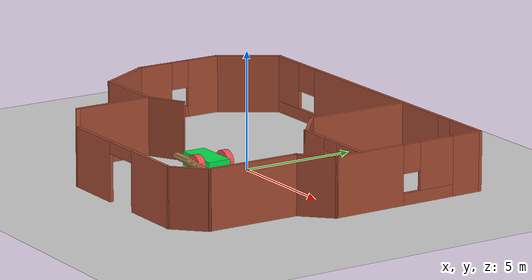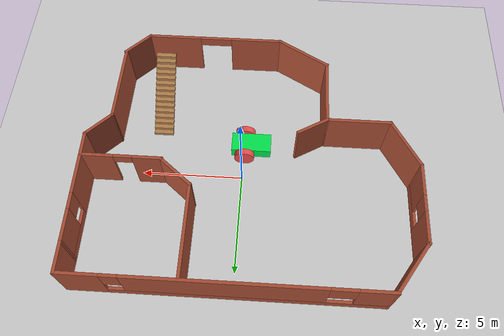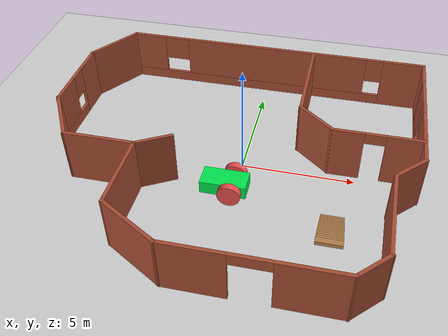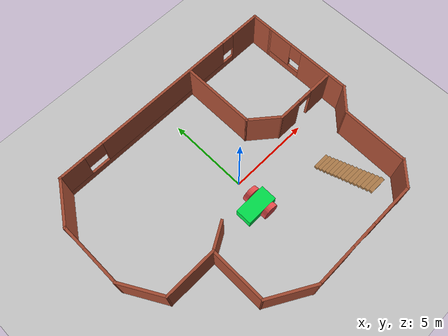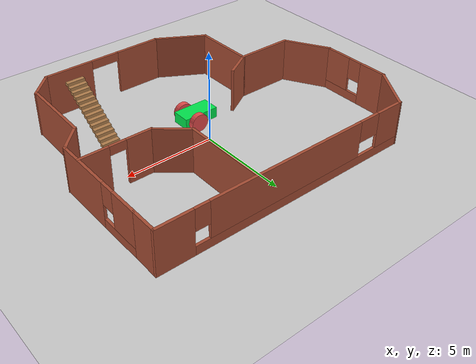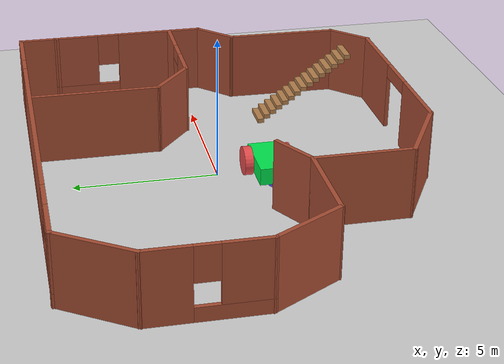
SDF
<?xml version="1.0"?>
<sdf version="1.4">
  <world name="default">
      <include>
      <uri>model://ground_plane</uri>
    </include>

    <include>
      <uri>model://sun</uri>
    </include>
    <model name='diff_robo'>
    <link name='link_0'>
      <inertial>
        <mass>1</mass>
        <inertia>
          <ixx>0.145833</ixx>
          <ixy>0</ixy>
          <ixz>0</ixz>
          <iyy>0.145833</iyy>
          <iyz>0</iyz>
          <izz>0.125</izz>
        </inertia>
        <pose>0 0 0 0 -0 0</pose>
      </inertial>
      <pose>-0.072508 -2.36784 0.5 1.5707 -0 0</pose>
      <gravity>1</gravity>
      <self_collide>0</self_collide>
      <kinematic>0</kinematic>
      <enable_wind>0</enable_wind>
      <visual name='visual'>
        <pose>0 0 0 0 -0 0</pose>
        <geometry>
          <cylinder>
            <radius>0.5</radius>
            <length>0.3</length>
          </cylinder>
        </geometry>
        <material>
          <lighting>1</lighting>
          <script>
            <uri>file://media/materials/scripts/gazebo.material</uri>
            <name>Gazebo/Grey</name>
          </script>
          <shader type='pixel'>
            <normal_map>__default__</normal_map>
          </shader>
          <ambient>0.9 0.3 0.3 1</ambient>
          <diffuse>0.7 0.7 0.7 1</diffuse>
          <specular>0.01 0.01 0.01 1</specular>
          <emissive>0 0 0 1</emissive>
        </material>
        <transparency>0</transparency>
        <cast_shadows>1</cast_shadows>
      </visual>
      <collision name='collision'>
        <laser_retro>0</laser_retro>
        <max_contacts>10</max_contacts>
        <pose>0 0 0 0 -0 0</pose>
        <geometry>
          <cylinder>
            <radius>0.5</radius>
            <length>0.3</length>
          </cylinder>
        </geometry>
        <surface>
          <friction>
            <ode>
              <mu>1</mu>
              <mu2>1</mu2>
              <fdir1>0 0 0</fdir1>
              <slip1>0</slip1>
              <slip2>0</slip2>
            </ode>
            <torsional>
              <coefficient>1</coefficient>
              <patch_radius>0</patch_radius>
              <surface_radius>0</surface_radius>
              <use_patch_radius>1</use_patch_radius>
              <ode>
                <slip>0</slip>
              </ode>
            </torsional>
          </friction>
          <bounce>
            <restitution_coefficient>0</restitution_coefficient>
            <threshold>1e+06</threshold>
          </bounce>
          <contact>
            <collide_without_contact>0</collide_without_contact>
            <collide_without_contact_bitmask>1</collide_without_contact_bitmask>
            <collide_bitmask>1</collide_bitmask>
            <ode>
              <soft_cfm>0</soft_cfm>
              <soft_erp>0.2</soft_erp>
              <kp>1e+13</kp>
              <kd>1</kd>
              <max_vel>0.01</max_vel>
              <min_depth>0</min_depth>
            </ode>
            <bullet>
              <split_impulse>1</split_impulse>
              <split_impulse_penetration_threshold>-0.01</split_impulse_penetration_threshold>
              <soft_cfm>0</soft_cfm>
              <soft_erp>0.2</soft_erp>
              <kp>1e+13</kp>
              <kd>1</kd>
            </bullet>
          </contact>
        </surface>
      </collision>
    </link>
    <link name='link_0_clone'>
      <inertial>
        <mass>1</mass>
        <inertia>
          <ixx>0.145833</ixx>
          <ixy>0</ixy>
          <ixz>0</ixz>
          <iyy>0.145833</iyy>
          <iyz>0</iyz>
          <izz>0.125</izz>
        </inertia>
        <pose>0 0 0 0 -0 0</pose>
      </inertial>
      <pose>-0.072508 -1.02384 0.5 1.5707 -0 0</pose>
      <gravity>1</gravity>
      <self_collide>0</self_collide>
      <kinematic>0</kinematic>
      <enable_wind>0</enable_wind>
      <visual name='visual'>
        <pose>0 0 0 0 -0 0</pose>
        <geometry>
          <cylinder>
            <radius>0.5</radius>
            <length>0.3</length>
          </cylinder>
        </geometry>
        <material>
          <lighting>1</lighting>
          <script>
            <uri>file://media/materials/scripts/gazebo.material</uri>
            <name>Gazebo/Grey</name>
          </script>
          <shader type='pixel'>
            <normal_map>__default__</normal_map>
          </shader>
          <ambient>0.9 0.3 0.3 1</ambient>
          <diffuse>0.7 0.7 0.7 1</diffuse>
          <specular>0.01 0.01 0.01 1</specular>
          <emissive>0 0 0 1</emissive>
        </material>
        <transparency>0</transparency>
        <cast_shadows>1</cast_shadows>
      </visual>
      <collision name='collision'>
        <laser_retro>0</laser_retro>
        <max_contacts>10</max_contacts>
        <pose>0 0 0 0 -0 0</pose>
        <geometry>
          <cylinder>
            <radius>0.5</radius>
            <length>0.3</length>
          </cylinder>
        </geometry>
        <surface>
          <friction>
            <ode>
              <mu>1</mu>
              <mu2>1</mu2>
              <fdir1>0 0 0</fdir1>
              <slip1>0</slip1>
              <slip2>0</slip2>
            </ode>
            <torsional>
              <coefficient>1</coefficient>
              <patch_radius>0</patch_radius>
              <surface_radius>0</surface_radius>
              <use_patch_radius>1</use_patch_radius>
              <ode>
                <slip>0</slip>
              </ode>
            </torsional>
          </friction>
          <bounce>
            <restitution_coefficient>0</restitution_coefficient>
            <threshold>1e+06</threshold>
          </bounce>
          <contact>
            <collide_without_contact>0</collide_without_contact>
            <collide_without_contact_bitmask>1</collide_without_contact_bitmask>
            <collide_bitmask>1</collide_bitmask>
            <ode>
              <soft_cfm>0</soft_cfm>
              <soft_erp>0.2</soft_erp>
              <kp>1e+13</kp>
              <kd>1</kd>
              <max_vel>0.01</max_vel>
              <min_depth>0</min_depth>
            </ode>
            <bullet>
              <split_impulse>1</split_impulse>
              <split_impulse_penetration_threshold>-0.01</split_impulse_penetration_threshold>
              <soft_cfm>0</soft_cfm>
              <soft_erp>0.2</soft_erp>
              <kp>1e+13</kp>
              <kd>1</kd>
            </bullet>
          </contact>
        </surface>
      </collision>
    </link>
    <link name='link_1'>
      <inertial>
        <mass>1</mass>
        <inertia>
          <ixx>0.166667</ixx>
          <ixy>0</ixy>
          <ixz>0</ixz>
          <iyy>0.166667</iyy>
          <iyz>0</iyz>
          <izz>0.166667</izz>
        </inertia>
        <pose>0 0 0 0 -0 0</pose>
      </inertial>
      <pose>-0.402508 -1.69584 0.5 0 -0 0</pose>
      <gravity>1</gravity>
      <self_collide>0</self_collide>
      <kinematic>0</kinematic>
      <enable_wind>0</enable_wind>
      <visual name='visual'>
        <pose>0 0 0 0 -0 0</pose>
        <geometry>
          <box>
            <size>2 1 0.6</size>
          </box>
        </geometry>
        <material>
          <lighting>1</lighting>
          <script>
            <uri>file://media/materials/scripts/gazebo.material</uri>
            <name>Gazebo/Grey</name>
          </script>
          <shader type='pixel'>
            <normal_map>__default__</normal_map>
          </shader>
          <ambient>0 0.9 0.3 1</ambient>
          <diffuse>0.7 0.7 0.7 1</diffuse>
          <specular>0.01 0.01 0.01 1</specular>
          <emissive>0 0 0 1</emissive>
        </material>
        <transparency>0</transparency>
        <cast_shadows>1</cast_shadows>
      </visual>
      <collision name='collision'>
        <laser_retro>0</laser_retro>
        <max_contacts>10</max_contacts>
        <pose>0 0 0 0 -0 0</pose>
        <geometry>
          <box>
            <size>2 1 0.6</size>
          </box>
        </geometry>
        <surface>
          <friction>
            <ode>
              <mu>1</mu>
              <mu2>1</mu2>
              <fdir1>0 0 0</fdir1>
              <slip1>0</slip1>
              <slip2>0</slip2>
            </ode>
            <torsional>
              <coefficient>1</coefficient>
              <patch_radius>0</patch_radius>
              <surface_radius>0</surface_radius>
              <use_patch_radius>1</use_patch_radius>
              <ode>
                <slip>0</slip>
              </ode>
            </torsional>
          </friction>
          <bounce>
            <restitution_coefficient>0</restitution_coefficient>
            <threshold>1e+06</threshold>
          </bounce>
          <contact>
            <collide_without_contact>0</collide_without_contact>
            <collide_without_contact_bitmask>1</collide_without_contact_bitmask>
            <collide_bitmask>1</collide_bitmask>
            <ode>
              <soft_cfm>0</soft_cfm>
              <soft_erp>0.2</soft_erp>
              <kp>1e+13</kp>
              <kd>1</kd>
              <max_vel>0.01</max_vel>
              <min_depth>0</min_depth>
            </ode>
            <bullet>
              <split_impulse>1</split_impulse>
              <split_impulse_penetration_threshold>-0.01</split_impulse_penetration_threshold>
              <soft_cfm>0</soft_cfm>
              <soft_erp>0.2</soft_erp>
              <kp>1e+13</kp>
              <kd>1</kd>
            </bullet>
          </contact>
        </surface>
      </collision>
    </link>
    <link name='link_2'>
      <inertial>
        <mass>1</mass>
        <inertia>
          <ixx>0.1</ixx>
          <ixy>0</ixy>
          <ixz>0</ixz>
          <iyy>0.1</iyy>
          <iyz>0</iyz>
          <izz>0.1</izz>
        </inertia>
        <pose>0 0 0 0 -0 0</pose>
      </inertial>
      <pose>-1.19834 -1.69584 0.2 0 -0 0</pose>
      <gravity>1</gravity>
      <self_collide>0</self_collide>
      <kinematic>0</kinematic>
      <enable_wind>0</enable_wind>
      <visual name='visual'>
        <pose>0 0 0 0 -0 0</pose>
        <geometry>
          <sphere>
            <radius>0.2</radius>
          </sphere>
        </geometry>
        <material>
          <lighting>1</lighting>
          <script>
            <uri>file://media/materials/scripts/gazebo.material</uri>
            <name>Gazebo/Grey</name>
          </script>
          <shader type='pixel'>
            <normal_map>__default__</normal_map>
          </shader>
          <ambient>0.3 0.3 0.9 1</ambient>
          <diffuse>0.7 0.7 0.7 1</diffuse>
          <specular>0.01 0.01 0.01 1</specular>
          <emissive>0 0 0 1</emissive>
        </material>
        <transparency>0</transparency>
        <cast_shadows>1</cast_shadows>
      </visual>
      <collision name='collision'>
        <laser_retro>0</laser_retro>
        <max_contacts>10</max_contacts>
        <pose>0 0 0 0 -0 0</pose>
        <geometry>
          <sphere>
            <radius>0.2</radius>
          </sphere>
        </geometry>
        <surface>
          <friction>
            <ode>
              <mu>1</mu>
              <mu2>1</mu2>
              <fdir1>0 0 0</fdir1>
              <slip1>0</slip1>
              <slip2>0</slip2>
            </ode>
            <torsional>
              <coefficient>1</coefficient>
              <patch_radius>0</patch_radius>
              <surface_radius>0</surface_radius>
              <use_patch_radius>1</use_patch_radius>
              <ode>
                <slip>0</slip>
              </ode>
            </torsional>
          </friction>
          <bounce>
            <restitution_coefficient>0</restitution_coefficient>
            <threshold>1e+06</threshold>
          </bounce>
          <contact>
            <collide_without_contact>0</collide_without_contact>
            <collide_without_contact_bitmask>1</collide_without_contact_bitmask>
            <collide_bitmask>1</collide_bitmask>
            <ode>
              <soft_cfm>0</soft_cfm>
              <soft_erp>0.2</soft_erp>
              <kp>1e+13</kp>
              <kd>1</kd>
              <max_vel>0.01</max_vel>
              <min_depth>0</min_depth>
            </ode>
            <bullet>
              <split_impulse>1</split_impulse>
              <split_impulse_penetration_threshold>-0.01</split_impulse_penetration_threshold>
              <soft_cfm>0</soft_cfm>
              <soft_erp>0.2</soft_erp>
              <kp>1e+13</kp>
              <kd>1</kd>
            </bullet>
          </contact>
        </surface>
      </collision>
    </link>
    <joint name='caster_joint' type='ball'>
      <parent>link_1</parent>
      <child>link_2</child>
      <pose>0 0 0 0 -0 0</pose>
      <physics>
        <ode>
          <limit>
            <cfm>0</cfm>
            <erp>0.2</erp>
          </limit>
          <suspension>
            <cfm>0</cfm>
            <erp>0.2</erp>
          </suspension>
        </ode>
      </physics>
    </joint>
    <joint name='left_wheel_joint' type='revolute'>
      <parent>link_1</parent>
      <child>link_0</child>
      <pose>0 0 0 0 -0.06 0</pose>
      <axis>
        <xyz>0 0 1</xyz>
        <limit>
          <lower>-1.79769e+308</lower>
          <upper>1.79769e+308</upper>
          <effort>-1</effort>
          <velocity>-1</velocity>
        </limit>
        <dynamics>
          <spring_reference>0</spring_reference>
          <spring_stiffness>0</spring_stiffness>
          <damping>0</damping>
          <friction>0</friction>
        </dynamics>
      </axis>
      <physics>
        <ode>
          <limit>
            <cfm>0</cfm>
            <erp>0.2</erp>
          </limit>
          <suspension>
            <cfm>0</cfm>
            <erp>0.2</erp>
          </suspension>
        </ode>
      </physics>
    </joint>
    <joint name='right_wheel_joint' type='revolute'>
      <parent>link_1</parent>
      <child>link_0_clone</child>
      <pose>0 0 0 0 -0 0</pose>
      <axis>
        <xyz>0 0 1</xyz>
        <limit>
          <lower>-1.79769e+308</lower>
          <upper>1.79769e+308</upper>
          <effort>-1</effort>
          <velocity>-1</velocity>
        </limit>
        <dynamics>
          <spring_reference>0</spring_reference>
          <spring_stiffness>0</spring_stiffness>
          <damping>0</damping>
          <friction>0</friction>
        </dynamics>
      </axis>
      <physics>
        <ode>
          <limit>
            <cfm>0</cfm>
            <erp>0.2</erp>
          </limit>
          <suspension>
            <cfm>0</cfm>
            <erp>0.2</erp>
          </suspension>
        </ode>
      </physics>
    </joint>
    <static>0</static>
    <allow_auto_disable>1</allow_auto_disable>
  </model>
  <model name='my_building'>
    <pose>-0.436912 -0.411084 0 0 -0 0</pose>

    <link name='Stairs_1'>
      <visual name='Stairs_1_Visual_0'>
        <pose>4.72294 -2.02924 0.083333 0 -0 0</pose>
        <geometry>
          <box>
            <size>1 0.233333 0.166667</size>
          </box>
        </geometry>
        <material>
          <script>
            <uri>file://media/materials/scripts/gazebo.material</uri>
            <name>Gazebo/Wood</name>
          </script>
          <ambient>1 1 1 1</ambient>
        </material>
        <meta>
          <layer>0</layer>
        </meta>
      </visual>
      <collision name='Stairs_1_Collision_0'>
        <geometry>
          <box>
            <size>1 0.233333 0.166667</size>
          </box>
        </geometry>
        <pose>4.72294 -2.02924 0.083333 0 -0 0</pose>
      </collision>
      <visual name='Stairs_1_Visual_1'>
        <pose>4.72294 -2.26257 0.25 0 -0 0</pose>
        <geometry>
          <box>
            <size>1 0.233333 0.166667</size>
          </box>
        </geometry>
        <material>
          <script>
            <uri>file://media/materials/scripts/gazebo.material</uri>
            <name>Gazebo/Wood</name>
          </script>
          <ambient>1 1 1 1</ambient>
        </material>
        <meta>
          <layer>0</layer>
        </meta>
      </visual>
      <collision name='Stairs_1_Collision_1'>
        <geometry>
          <box>
            <size>1 0.233333 0.166667</size>
          </box>
        </geometry>
        <pose>4.72294 -2.26257 0.25 0 -0 0</pose>
      </collision>
      <visual name='Stairs_1_Visual_2'>
        <pose>4.72294 -2.49591 0.416667 0 -0 0</pose>
        <geometry>
          <box>
            <size>1 0.233333 0.166667</size>
          </box>
        </geometry>
        <material>
          <script>
            <uri>file://media/materials/scripts/gazebo.material</uri>
            <name>Gazebo/Wood</name>
          </script>
          <ambient>1 1 1 1</ambient>
        </material>
        <meta>
          <layer>0</layer>
        </meta>
      </visual>
      <collision name='Stairs_1_Collision_2'>
        <geometry>
          <box>
            <size>1 0.233333 0.166667</size>
          </box>
        </geometry>
        <pose>4.72294 -2.49591 0.416667 0 -0 0</pose>
      </collision>
      <visual name='Stairs_1_Visual_3'>
        <pose>4.72294 -2.72924 0.583333 0 -0 0</pose>
        <geometry>
          <box>
            <size>1 0.233333 0.166667</size>
          </box>
        </geometry>
        <material>
          <script>
            <uri>file://media/materials/scripts/gazebo.material</uri>
            <name>Gazebo/Wood</name>
          </script>
          <ambient>1 1 1 1</ambient>
        </material>
        <meta>
          <layer>0</layer>
        </meta>
      </visual>
      <collision name='Stairs_1_Collision_3'>
        <geometry>
          <box>
            <size>1 0.233333 0.166667</size>
          </box>
        </geometry>
        <pose>4.72294 -2.72924 0.583333 0 -0 0</pose>
      </collision>
      <visual name='Stairs_1_Visual_4'>
        <pose>4.72294 -2.96257 0.75 0 -0 0</pose>
        <geometry>
          <box>
            <size>1 0.233333 0.166667</size>
          </box>
        </geometry>
        <material>
          <script>
            <uri>file://media/materials/scripts/gazebo.material</uri>
            <name>Gazebo/Wood</name>
          </script>
          <ambient>1 1 1 1</ambient>
        </material>
        <meta>
          <layer>0</layer>
        </meta>
      </visual>
      <collision name='Stairs_1_Collision_4'>
        <geometry>
          <box>
            <size>1 0.233333 0.166667</size>
          </box>
        </geometry>
        <pose>4.72294 -2.96257 0.75 0 -0 0</pose>
      </collision>
      <visual name='Stairs_1_Visual_5'>
        <pose>4.72294 -3.19591 0.916667 0 -0 0</pose>
        <geometry>
          <box>
            <size>1 0.233333 0.166667</size>
          </box>
        </geometry>
        <material>
          <script>
            <uri>file://media/materials/scripts/gazebo.material</uri>
            <name>Gazebo/Wood</name>
          </script>
          <ambient>1 1 1 1</ambient>
        </material>
        <meta>
          <layer>0</layer>
        </meta>
      </visual>
      <collision name='Stairs_1_Collision_5'>
        <geometry>
          <box>
            <size>1 0.233333 0.166667</size>
          </box>
        </geometry>
        <pose>4.72294 -3.19591 0.916667 0 -0 0</pose>
      </collision>
      <visual name='Stairs_1_Visual_6'>
        <pose>4.72294 -3.42924 1.08333 0 -0 0</pose>
        <geometry>
          <box>
            <size>1 0.233333 0.166667</size>
          </box>
        </geometry>
        <material>
          <script>
            <uri>file://media/materials/scripts/gazebo.material</uri>
            <name>Gazebo/Wood</name>
          </script>
          <ambient>1 1 1 1</ambient>
        </material>
        <meta>
          <layer>0</layer>
        </meta>
      </visual>
      <collision name='Stairs_1_Collision_6'>
        <geometry>
          <box>
            <size>1 0.233333 0.166667</size>
          </box>
        </geometry>
        <pose>4.72294 -3.42924 1.08333 0 -0 0</pose>
      </collision>
      <visual name='Stairs_1_Visual_7'>
        <pose>4.72294 -3.66257 1.25 0 -0 0</pose>
        <geometry>
          <box>
            <size>1 0.233333 0.166667</size>
          </box>
        </geometry>
        <material>
          <script>
            <uri>file://media/materials/scripts/gazebo.material</uri>
            <name>Gazebo/Wood</name>
          </script>
          <ambient>1 1 1 1</ambient>
        </material>
        <meta>
          <layer>0</layer>
        </meta>
      </visual>
      <collision name='Stairs_1_Collision_7'>
        <geometry>
          <box>
            <size>1 0.233333 0.166667</size>
          </box>
        </geometry>
        <pose>4.72294 -3.66257 1.25 0 -0 0</pose>
      </collision>
      <visual name='Stairs_1_Visual_8'>
        <pose>4.72294 -3.89591 1.41667 0 -0 0</pose>
        <geometry>
          <box>
            <size>1 0.233333 0.166667</size>
          </box>
        </geometry>
        <material>
          <script>
            <uri>file://media/materials/scripts/gazebo.material</uri>
            <name>Gazebo/Wood</name>
          </script>
          <ambient>1 1 1 1</ambient>
        </material>
        <meta>
          <layer>0</layer>
        </meta>
      </visual>
      <collision name='Stairs_1_Collision_8'>
        <geometry>
          <box>
            <size>1 0.233333 0.166667</size>
          </box>
        </geometry>
        <pose>4.72294 -3.89591 1.41667 0 -0 0</pose>
      </collision>
      <visual name='Stairs_1_Visual_9'>
        <pose>4.72294 -4.12924 1.58333 0 -0 0</pose>
        <geometry>
          <box>
            <size>1 0.233333 0.166667</size>
          </box>
        </geometry>
        <material>
          <script>
            <uri>file://media/materials/scripts/gazebo.material</uri>
            <name>Gazebo/Wood</name>
          </script>
          <ambient>1 1 1 1</ambient>
        </material>
        <meta>
          <layer>0</layer>
        </meta>
      </visual>
      <collision name='Stairs_1_Collision_9'>
        <geometry>
          <box>
            <size>1 0.233333 0.166667</size>
          </box>
        </geometry>
        <pose>4.72294 -4.12924 1.58333 0 -0 0</pose>
      </collision>
      <visual name='Stairs_1_Visual_10'>
        <pose>4.72294 -4.36257 1.75 0 -0 0</pose>
        <geometry>
          <box>
            <size>1 0.233333 0.166667</size>
          </box>
        </geometry>
        <material>
          <script>
            <uri>file://media/materials/scripts/gazebo.material</uri>
            <name>Gazebo/Wood</name>
          </script>
          <ambient>1 1 1 1</ambient>
        </material>
        <meta>
          <layer>0</layer>
        </meta>
      </visual>
      <collision name='Stairs_1_Collision_10'>
        <geometry>
          <box>
            <size>1 0.233333 0.166667</size>
          </box>
        </geometry>
        <pose>4.72294 -4.36257 1.75 0 -0 0</pose>
      </collision>
      <visual name='Stairs_1_Visual_11'>
        <pose>4.72294 -4.59591 1.91667 0 -0 0</pose>
        <geometry>
          <box>
            <size>1 0.233333 0.166667</size>
          </box>
        </geometry>
        <material>
          <script>
            <uri>file://media/materials/scripts/gazebo.material</uri>
            <name>Gazebo/Wood</name>
          </script>
          <ambient>1 1 1 1</ambient>
        </material>
        <meta>
          <layer>0</layer>
        </meta>
      </visual>
      <collision name='Stairs_1_Collision_11'>
        <geometry>
          <box>
            <size>1 0.233333 0.166667</size>
          </box>
        </geometry>
        <pose>4.72294 -4.59591 1.91667 0 -0 0</pose>
      </collision>
      <visual name='Stairs_1_Visual_12'>
        <pose>4.72294 -4.82924 2.08333 0 -0 0</pose>
        <geometry>
          <box>
            <size>1 0.233333 0.166667</size>
          </box>
        </geometry>
        <material>
          <script>
            <uri>file://media/materials/scripts/gazebo.material</uri>
            <name>Gazebo/Wood</name>
          </script>
          <ambient>1 1 1 1</ambient>
        </material>
        <meta>
          <layer>0</layer>
        </meta>
      </visual>
      <collision name='Stairs_1_Collision_12'>
        <geometry>
          <box>
            <size>1 0.233333 0.166667</size>
          </box>
        </geometry>
        <pose>4.72294 -4.82924 2.08333 0 -0 0</pose>
      </collision>
      <visual name='Stairs_1_Visual_13'>
        <pose>4.72294 -5.06257 2.25 0 -0 0</pose>
        <geometry>
          <box>
            <size>1 0.233333 0.166667</size>
          </box>
        </geometry>
        <material>
          <script>
            <uri>file://media/materials/scripts/gazebo.material</uri>
            <name>Gazebo/Wood</name>
          </script>
          <ambient>1 1 1 1</ambient>
        </material>
        <meta>
          <layer>0</layer>
        </meta>
      </visual>
      <collision name='Stairs_1_Collision_13'>
        <geometry>
          <box>
            <size>1 0.233333 0.166667</size>
          </box>
        </geometry>
        <pose>4.72294 -5.06257 2.25 0 -0 0</pose>
      </collision>
      <visual name='Stairs_1_Visual_14'>
        <pose>4.72294 -5.29591 2.41667 0 -0 0</pose>
        <geometry>
          <box>
            <size>1 0.233333 0.166667</size>
          </box>
        </geometry>
        <material>
          <script>
            <uri>file://media/materials/scripts/gazebo.material</uri>
            <name>Gazebo/Wood</name>
          </script>
          <ambient>1 1 1 1</ambient>
        </material>
        <meta>
          <layer>0</layer>
        </meta>
      </visual>
      <collision name='Stairs_1_Collision_14'>
        <geometry>
          <box>
            <size>1 0.233333 0.166667</size>
          </box>
        </geometry>
        <pose>4.72294 -5.29591 2.41667 0 -0 0</pose>
      </collision>
    </link>
    <link name='Wall_10'>
      <collision name='Wall_10_Collision'>
        <geometry>
          <box>
            <size>3 0.15 2.5</size>
          </box>
        </geometry>
        <pose>0 0 1.25 0 -0 0</pose>
      </collision>
      <visual name='Wall_10_Visual'>
        <pose>0 0 1.25 0 -0 0</pose>
        <geometry>
          <box>
            <size>3 0.15 2.5</size>
          </box>
        </geometry>
        <material>
          <script>
            <uri>file://media/materials/scripts/gazebo.material</uri>
            <name>Gazebo/Bricks</name>
          </script>
          <ambient>1 1 1 1</ambient>
        </material>
        <meta>
          <layer>0</layer>
        </meta>
      </visual>
      <pose>-2.41253 -5.86069 0 0 -0 -0.523599</pose>
    </link>
    <link name='Wall_14'>
      <collision name='Wall_14_Collision'>
        <geometry>
          <box>
            <size>1.75 0.15 2.5</size>
          </box>
        </geometry>
        <pose>0 0 1.25 0 -0 0</pose>
      </collision>
      <visual name='Wall_14_Visual'>
        <pose>0 0 1.25 0 -0 0</pose>
        <geometry>
          <box>
            <size>1.75 0.15 2.5</size>
          </box>
        </geometry>
        <material>
          <script>
            <uri>file://media/materials/scripts/gazebo.material</uri>
            <name>Gazebo/Bricks</name>
          </script>
          <ambient>1 1 1 1</ambient>
        </material>
        <meta>
          <layer>0</layer>
        </meta>
      </visual>
      <pose>6.3034 -5.9788 0 0 -0 0.785398</pose>
    </link>
    <link name='Wall_15'>
      <collision name='Wall_15_Collision'>
        <geometry>
          <box>
            <size>4.11046 0.15 2.5</size>
          </box>
        </geometry>
        <pose>0 0 1.25 0 -0 0</pose>
      </collision>
      <visual name='Wall_15_Visual'>
        <pose>0 0 1.25 0 -0 0</pose>
        <geometry>
          <box>
            <size>4.11046 0.15 2.5</size>
          </box>
        </geometry>
        <material>
          <script>
            <uri>file://media/materials/scripts/gazebo.material</uri>
            <name>Gazebo/Bricks</name>
          </script>
          <ambient>1 1 1 1</ambient>
        </material>
        <meta>
          <layer>0</layer>
        </meta>
      </visual>
      <pose>6.88008 -3.43316 0 0 -0 1.55415</pose>
    </link>
    <link name='Wall_16'>
      <collision name='Wall_16_Collision'>
        <geometry>
          <box>
            <size>1.75 0.15 2.5</size>
          </box>
        </geometry>
        <pose>0 0 1.25 0 -0 0</pose>
      </collision>
      <visual name='Wall_16_Visual'>
        <pose>0 0 1.25 0 -0 0</pose>
        <geometry>
          <box>
            <size>1.75 0.15 2.5</size>
          </box>
        </geometry>
        <material>
          <script>
            <uri>file://media/materials/scripts/gazebo.material</uri>
            <name>Gazebo/Bricks</name>
          </script>
          <ambient>1 1 1 1</ambient>
        </material>
        <meta>
          <layer>0</layer>
        </meta>
      </visual>
      <pose>7.47873 -0.887521 0 0 -0 0.785398</pose>
    </link>
    <link name='Wall_17'>
      <pose>8.03611 2.45705 0 0 -0 1.57379</pose>
      <visual name='Wall_17_Visual_0'>
        <pose>-1.23829 0 1.25 0 -0 0</pose>
        <geometry>
          <box>
            <size>3.23122 0.15 2.5</size>
          </box>
        </geometry>
        <material>
          <script>
            <uri>file://media/materials/scripts/gazebo.material</uri>
            <name>Gazebo/Bricks</name>
          </script>
          <ambient>1 1 1 1</ambient>
        </material>
        <meta>
          <layer>0</layer>
        </meta>
      </visual>
      <collision name='Wall_17_Collision_0'>
        <geometry>
          <box>
            <size>3.23122 0.15 2.5</size>
          </box>
        </geometry>
        <pose>-1.23829 0 1.25 0 -0 0</pose>
      </collision>
      <visual name='Wall_17_Visual_1'>
        <pose>1.61561 0 0.25 0 -0 0</pose>
        <geometry>
          <box>
            <size>2.47657 0.15 0.5</size>
          </box>
        </geometry>
        <material>
          <script>
            <uri>file://media/materials/scripts/gazebo.material</uri>
            <name>Gazebo/Bricks</name>
          </script>
          <ambient>1 1 1 1</ambient>
        </material>
        <meta>
          <layer>0</layer>
        </meta>
      </visual>
      <collision name='Wall_17_Collision_1'>
        <geometry>
          <box>
            <size>2.47657 0.15 0.5</size>
          </box>
        </geometry>
        <pose>1.61561 0 0.25 0 -0 0</pose>
      </collision>
      <visual name='Wall_17_Visual_2'>
        <pose>2.01561 0 1.5 0 -0 0</pose>
        <geometry>
          <box>
            <size>1.67657 0.15 2</size>
          </box>
        </geometry>
        <material>
          <script>
            <uri>file://media/materials/scripts/gazebo.material</uri>
            <name>Gazebo/Bricks</name>
          </script>
          <ambient>1 1 1 1</ambient>
        </material>
        <meta>
          <layer>0</layer>
        </meta>
      </visual>
      <collision name='Wall_17_Collision_2'>
        <geometry>
          <box>
            <size>1.67657 0.15 2</size>
          </box>
        </geometry>
        <pose>2.01561 0 1.5 0 -0 0</pose>
      </collision>
      <visual name='Wall_17_Visual_3'>
        <pose>0.777321 0 1.9 0 -0 0</pose>
        <geometry>
          <box>
            <size>0.8 0.15 1.2</size>
          </box>
        </geometry>
        <material>
          <script>
            <uri>file://media/materials/scripts/gazebo.material</uri>
            <name>Gazebo/Bricks</name>
          </script>
          <ambient>1 1 1 1</ambient>
        </material>
        <meta>
          <layer>0</layer>
        </meta>
      </visual>
      <collision name='Wall_17_Collision_3'>
        <geometry>
          <box>
            <size>0.8 0.15 1.2</size>
          </box>
        </geometry>
        <pose>0.777321 0 1.9 0 -0 0</pose>
      </collision>
    </link>
    <link name='Wall_18'>
      <collision name='Wall_18_Collision'>
        <geometry>
          <box>
            <size>1.5 0.15 2.5</size>
          </box>
        </geometry>
        <pose>0 0 1.25 0 -0 0</pose>
      </collision>
      <visual name='Wall_18_Visual'>
        <pose>0 0 1.25 0 -0 0</pose>
        <geometry>
          <box>
            <size>1.5 0.15 2.5</size>
          </box>
        </geometry>
        <material>
          <script>
            <uri>file://media/materials/scripts/gazebo.material</uri>
            <name>Gazebo/Bricks</name>
          </script>
          <ambient>0.929412 0.831373 0 1</ambient>
        </material>
        <meta>
          <layer>0</layer>
        </meta>
      </visual>
      <pose>8.0278 5.886 0 0 -0 1.5708</pose>
    </link>
    <link name='Wall_22'>
      <collision name='Wall_22_Collision'>
        <geometry>
          <box>
            <size>1.75 0.15 2.5</size>
          </box>
        </geometry>
        <pose>0 0 1.25 0 -0 0</pose>
      </collision>
      <visual name='Wall_22_Visual'>
        <pose>0 0 1.25 0 -0 0</pose>
        <geometry>
          <box>
            <size>1.75 0.15 2.5</size>
          </box>
        </geometry>
        <material>
          <script>
            <uri>file://media/materials/scripts/gazebo.material</uri>
            <name>Gazebo/Bricks</name>
          </script>
          <ambient>1 1 1 1</ambient>
        </material>
        <meta>
          <layer>0</layer>
        </meta>
      </visual>
      <pose>-2.9538 -1.39819 0 0 -0 0.523599</pose>
    </link>

    <link name='Wall_33'>
      <pose>2.27964 -6.55884 0 0 -0 0.00415</pose>
      <visual name='Wall_33_Visual_0'>
        <pose>-2.20117 0 1.25 0 -0 0</pose>
        <geometry>
          <box>
            <size>2.66389 0.15 2.5</size>
          </box>
        </geometry>
        <material>
          <script>
            <uri>file://media/materials/scripts/gazebo.material</uri>
            <name>Gazebo/Bricks</name>
          </script>
          <ambient>1 1 1 1</ambient>
        </material>
        <meta>
          <layer>0</layer>
        </meta>
      </visual>
      <collision name='Wall_33_Collision_0'>
        <geometry>
          <box>
            <size>2.66389 0.15 2.5</size>
          </box>
        </geometry>
        <pose>-2.20117 0 1.25 0 -0 0</pose>
      </collision>
      <visual name='Wall_33_Visual_1'>
        <pose>2.14418 0 1.25 0 -0 0</pose>
        <geometry>
          <box>
            <size>2.77786 0.15 2.5</size>
          </box>
        </geometry>
        <material>
          <script>
            <uri>file://media/materials/scripts/gazebo.material</uri>
            <name>Gazebo/Bricks</name>
          </script>
          <ambient>1 1 1 1</ambient>
        </material>
        <meta>
          <layer>0</layer>
        </meta>
      </visual>
      <collision name='Wall_33_Collision_1'>
        <geometry>
          <box>
            <size>2.77786 0.15 2.5</size>
          </box>
        </geometry>
        <pose>2.14418 0 1.25 0 -0 0</pose>
      </collision>
      <visual name='Wall_33_Visual_2'>
        <pose>-0.056989 0 2.25 0 -0 0</pose>
        <geometry>
          <box>
            <size>1.62447 0.15 0.5</size>
          </box>
        </geometry>
        <material>
          <script>
            <uri>file://media/materials/scripts/gazebo.material</uri>
            <name>Gazebo/Bricks</name>
          </script>
          <ambient>1 1 1 1</ambient>
        </material>
        <meta>
          <layer>0</layer>
        </meta>
      </visual>
      <collision name='Wall_33_Collision_2'>
        <geometry>
          <box>
            <size>1.62447 0.15 0.5</size>
          </box>
        </geometry>
        <pose>-0.056989 0 2.25 0 -0 0</pose>
      </collision>
    </link>
    <link name='Wall_35'>
      <collision name='Wall_35_Collision'>
        <geometry>
          <box>
            <size>4.5 0.15 2.5</size>
          </box>
        </geometry>
        <pose>0 0 1.25 0 -0 0</pose>
      </collision>
      <visual name='Wall_35_Visual'>
        <pose>0 0 1.25 0 -0 0</pose>
        <geometry>
          <box>
            <size>4.5 0.15 2.5</size>
          </box>
        </geometry>
        <material>
          <script>
            <uri>file://media/materials/scripts/gazebo.material</uri>
            <name>Gazebo/Bricks</name>
          </script>
          <ambient>1 1 1 1</ambient>
        </material>
        <meta>
          <layer>0</layer>
        </meta>
      </visual>
      <pose>2.70138 4.25976 0 0 -0 -1.5708</pose>
    </link>
    <link name='Wall_36'>
      <collision name='Wall_36_Collision'>
        <geometry>
          <box>
            <size>2.08029 0.15 2.5</size>
          </box>
        </geometry>
        <pose>0 0 1.25 0 -0 0</pose>
      </collision>
      <visual name='Wall_36_Visual'>
        <pose>0 0 1.25 0 -0 0</pose>
        <geometry>
          <box>
            <size>2.08029 0.15 2.5</size>
          </box>
        </geometry>
        <material>
          <script>
            <uri>file://media/materials/scripts/gazebo.material</uri>
            <name>Gazebo/Bricks</name>
          </script>
          <ambient>1 1 1 1</ambient>
        </material>
        <meta>
          <layer>0</layer>
        </meta>
      </visual>
      <pose>3.44443 1.46882 0 0 -0 -0.692137</pose>
    </link>
    <link name='Wall_37'>
      <pose>6.11248 0.827455 0 0 -0 0</pose>
      <visual name='Wall_37_Visual_0'>
        <pose>-1.26639 0 1.25 0 -0 0</pose>
        <geometry>
          <box>
            <size>1.46721 0.15 2.5</size>
          </box>
        </geometry>
        <material>
          <script>
            <uri>file://media/materials/scripts/gazebo.material</uri>
            <name>Gazebo/Bricks</name>
          </script>
          <ambient>1 1 1 1</ambient>
        </material>
        <meta>
          <layer>0</layer>
        </meta>
      </visual>
      <collision name='Wall_37_Collision_0'>
        <geometry>
          <box>
            <size>1.46721 0.15 2.5</size>
          </box>
        </geometry>
        <pose>-1.26639 0 1.25 0 -0 0</pose>
      </collision>
      <visual name='Wall_37_Visual_1'>
        <pose>1.18361 0 1.25 0 -0 0</pose>
        <geometry>
          <box>
            <size>1.63279 0.15 2.5</size>
          </box>
        </geometry>
        <material>
          <script>
            <uri>file://media/materials/scripts/gazebo.material</uri>
            <name>Gazebo/Bricks</name>
          </script>
          <ambient>1 1 1 1</ambient>
        </material>
        <meta>
          <layer>0</layer>
        </meta>
      </visual>
      <collision name='Wall_37_Collision_1'>
        <geometry>
          <box>
            <size>1.63279 0.15 2.5</size>
          </box>
        </geometry>
        <pose>1.18361 0 1.25 0 -0 0</pose>
      </collision>
      <visual name='Wall_37_Visual_2'>
        <pose>-0.082786 0 2.25 0 -0 0</pose>
        <geometry>
          <box>
            <size>0.9 0.15 0.5</size>
          </box>
        </geometry>
        <material>
          <script>
            <uri>file://media/materials/scripts/gazebo.material</uri>
            <name>Gazebo/Bricks</name>
          </script>
          <ambient>1 1 1 1</ambient>
        </material>
        <meta>
          <layer>0</layer>
        </meta>
      </visual>
      <collision name='Wall_37_Collision_2'>
        <geometry>
          <box>
            <size>0.9 0.15 0.5</size>
          </box>
        </geometry>
        <pose>-0.082786 0 2.25 0 -0 0</pose>
      </collision>
    </link>
    <link name='Wall_4'>
      <pose>0.727905 6.57177 0 0 -0 3.14159</pose>
      <visual name='Wall_4_Visual_0'>
        <pose>-6.37417 0 1.25 0 -0 0</pose>
        <geometry>
          <box>
            <size>2.00167 0.15 2.5</size>
          </box>
        </geometry>
        <material>
          <script>
            <uri>file://media/materials/scripts/gazebo.material</uri>
            <name>Gazebo/Bricks</name>
          </script>
          <ambient>1 1 1 1</ambient>
        </material>
        <meta>
          <layer>0</layer>
        </meta>
      </visual>
      <collision name='Wall_4_Collision_0'>
        <geometry>
          <box>
            <size>2.00167 0.15 2.5</size>
          </box>
        </geometry>
        <pose>-6.37417 0 1.25 0 -0 0</pose>
      </collision>
      <visual name='Wall_4_Visual_1'>
        <pose>1.00083 0 0.25 0 -0 0</pose>
        <geometry>
          <box>
            <size>12.7483 0.15 0.5</size>
          </box>
        </geometry>
        <material>
          <script>
            <uri>file://media/materials/scripts/gazebo.material</uri>
            <name>Gazebo/Bricks</name>
          </script>
          <ambient>1 1 1 1</ambient>
        </material>
        <meta>
          <layer>0</layer>
        </meta>
      </visual>
      <collision name='Wall_4_Collision_1'>
        <geometry>
          <box>
            <size>12.7483 0.15 0.5</size>
          </box>
        </geometry>
        <pose>1.00083 0 0.25 0 -0 0</pose>
      </collision>
      <visual name='Wall_4_Visual_2'>
        <pose>-0.052096 0 1.5 0 -0 0</pose>
        <geometry>
          <box>
            <size>9.04248 0.15 2</size>
          </box>
        </geometry>
        <material>
          <script>
            <uri>file://media/materials/scripts/gazebo.material</uri>
            <name>Gazebo/Bricks</name>
          </script>
          <ambient>1 1 1 1</ambient>
        </material>
        <meta>
          <layer>0</layer>
        </meta>
      </visual>
      <collision name='Wall_4_Collision_2'>
        <geometry>
          <box>
            <size>9.04248 0.15 2</size>
          </box>
        </geometry>
        <pose>-0.052096 0 1.5 0 -0 0</pose>
      </collision>
      <visual name='Wall_4_Visual_3'>
        <pose>6.52905 0 1.5 0 -0 0</pose>
        <geometry>
          <box>
            <size>1.6919 0.15 2</size>
          </box>
        </geometry>
        <material>
          <script>
            <uri>file://media/materials/scripts/gazebo.material</uri>
            <name>Gazebo/Bricks</name>
          </script>
          <ambient>1 1 1 1</ambient>
        </material>
        <meta>
          <layer>0</layer>
        </meta>
      </visual>
      <collision name='Wall_4_Collision_3'>
        <geometry>
          <box>
            <size>1.6919 0.15 2</size>
          </box>
        </geometry>
        <pose>6.52905 0 1.5 0 -0 0</pose>
      </collision>
      <visual name='Wall_4_Visual_4'>
        <pose>-4.97333 0 1.9 0 -0 0</pose>
        <geometry>
          <box>
            <size>0.8 0.15 1.2</size>
          </box>
        </geometry>
        <material>
          <script>
            <uri>file://media/materials/scripts/gazebo.material</uri>
            <name>Gazebo/Bricks</name>
          </script>
          <ambient>1 1 1 1</ambient>
        </material>
        <meta>
          <layer>0</layer>
        </meta>
      </visual>
      <collision name='Wall_4_Collision_4'>
        <geometry>
          <box>
            <size>0.8 0.15 1.2</size>
          </box>
        </geometry>
        <pose>-4.97333 0 1.9 0 -0 0</pose>
      </collision>
      <visual name='Wall_4_Visual_5'>
        <pose>5.07612 0 1.9 0 -0 0</pose>
        <geometry>
          <box>
            <size>1.21396 0.15 1.2</size>
          </box>
        </geometry>
        <material>
          <script>
            <uri>file://media/materials/scripts/gazebo.material</uri>
            <name>Gazebo/Bricks</name>
          </script>
          <ambient>1 1 1 1</ambient>
        </material>
        <meta>
          <layer>0</layer>
        </meta>
      </visual>
      <collision name='Wall_4_Collision_5'>
        <geometry>
          <box>
            <size>1.21396 0.15 1.2</size>
          </box>
        </geometry>
        <pose>5.07612 0 1.9 0 -0 0</pose>
      </collision>
    </link>
    <link name='Wall_5'>
      <collision name='Wall_5_Collision'>
        <geometry>
          <box>
            <size>2.86452 0.15 2.5</size>
          </box>
        </geometry>
        <pose>0 0 1.25 0 -0 0</pose>
      </collision>
      <visual name='Wall_5_Visual'>
        <pose>0 0 1.25 0 -0 0</pose>
        <geometry>
          <box>
            <size>2.86452 0.15 2.5</size>
          </box>
        </geometry>
        <material>
          <script>
            <uri>file://media/materials/scripts/gazebo.material</uri>
            <name>Gazebo/Bricks</name>
          </script>
          <ambient>1 1 1 1</ambient>
        </material>
        <meta>
          <layer>0</layer>
        </meta>
      </visual>
      <pose>-7.30105 5.43762 0 0 -0 -2.15235</pose>
    </link>
    <link name='Wall_6'>
      <pose>-8.04662 2.37848 0 0 -0 -1.5708</pose>
      <visual name='Wall_6_Visual_0'>
        <pose>-1.20649 0 1.25 0 -0 0</pose>
        <geometry>
          <box>
            <size>1.58702 0.15 2.5</size>
          </box>
        </geometry>
        <material>
          <script>
            <uri>file://media/materials/scripts/gazebo.material</uri>
            <name>Gazebo/Bricks</name>
          </script>
          <ambient>1 1 1 1</ambient>
        </material>
        <meta>
          <layer>0</layer>
        </meta>
      </visual>
      <collision name='Wall_6_Collision_0'>
        <geometry>
          <box>
            <size>1.58702 0.15 2.5</size>
          </box>
        </geometry>
        <pose>-1.20649 0 1.25 0 -0 0</pose>
      </collision>
      <visual name='Wall_6_Visual_1'>
        <pose>0.793508 0 0.25 0 -0 0</pose>
        <geometry>
          <box>
            <size>2.41298 0.15 0.5</size>
          </box>
        </geometry>
        <material>
          <script>
            <uri>file://media/materials/scripts/gazebo.material</uri>
            <name>Gazebo/Bricks</name>
          </script>
          <ambient>1 1 1 1</ambient>
        </material>
        <meta>
          <layer>0</layer>
        </meta>
      </visual>
      <collision name='Wall_6_Collision_1'>
        <geometry>
          <box>
            <size>2.41298 0.15 0.5</size>
          </box>
        </geometry>
        <pose>0.793508 0 0.25 0 -0 0</pose>
      </collision>
      <visual name='Wall_6_Visual_2'>
        <pose>1.19351 0 1.5 0 -0 0</pose>
        <geometry>
          <box>
            <size>1.61298 0.15 2</size>
          </box>
        </geometry>
        <material>
          <script>
            <uri>file://media/materials/scripts/gazebo.material</uri>
            <name>Gazebo/Bricks</name>
          </script>
          <ambient>1 1 1 1</ambient>
        </material>
        <meta>
          <layer>0</layer>
        </meta>
      </visual>
      <collision name='Wall_6_Collision_2'>
        <geometry>
          <box>
            <size>1.61298 0.15 2</size>
          </box>
        </geometry>
        <pose>1.19351 0 1.5 0 -0 0</pose>
      </collision>
      <visual name='Wall_6_Visual_3'>
        <pose>-0.012984 0 1.9 0 -0 0</pose>
        <geometry>
          <box>
            <size>0.8 0.15 1.2</size>
          </box>
        </geometry>
        <material>
          <script>
            <uri>file://media/materials/scripts/gazebo.material</uri>
            <name>Gazebo/Bricks</name>
          </script>
          <ambient>1 1 1 1</ambient>
        </material>
        <meta>
          <layer>0</layer>
        </meta>
      </visual>
      <collision name='Wall_6_Collision_3'>
        <geometry>
          <box>
            <size>0.8 0.15 1.2</size>
          </box>
        </geometry>
        <pose>-0.012984 0 1.9 0 -0 0</pose>
      </collision>
    </link>
    <link name='Wall_7'>
      <collision name='Wall_7_Collision'>
        <geometry>
          <box>
            <size>2.75 0.15 2.5</size>
          </box>
        </geometry>
        <pose>0 0 1.25 0 -0 0</pose>
      </collision>
      <visual name='Wall_7_Visual'>
        <pose>0 0 1.25 0 -0 0</pose>
        <geometry>
          <box>
            <size>2.75 0.15 2.5</size>
          </box>
        </geometry>
        <material>
          <script>
            <uri>file://media/materials/scripts/gazebo.material</uri>
            <name>Gazebo/Bricks</name>
          </script>
          <ambient>1 1 1 1</ambient>
        </material>
        <meta>
          <layer>0</layer>
        </meta>
      </visual>
      <pose>-7.39662 -0.672353 0 0 -0 -1.0472</pose>
    </link>
    <link name='Wall_8'>
      <collision name='Wall_8_Collision'>
        <geometry>
          <box>
            <size>3.25 0.15 2.5</size>
          </box>
        </geometry>
        <pose>0 0 1.25 0 -0 0</pose>
      </collision>
      <visual name='Wall_8_Visual'>
        <pose>0 0 1.25 0 -0 0</pose>
        <geometry>
          <box>
            <size>3.25 0.15 2.5</size>
          </box>
        </geometry>
        <material>
          <script>
            <uri>file://media/materials/scripts/gazebo.material</uri>
            <name>Gazebo/Bricks</name>
          </script>
          <ambient>1 1 1 1</ambient>
        </material>
        <meta>
          <layer>0</layer>
        </meta>
      </visual>
      <pose>-5.19662 -1.79819 0 0 -0 0</pose>
    </link>
    <link name='Wall_9'>
      <collision name='Wall_9_Collision'>
        <geometry>
          <box>
            <size>3.5 0.15 2.5</size>
          </box>
        </geometry>
        <pose>0 0 1.25 0 -0 0</pose>
      </collision>
      <visual name='Wall_9_Visual'>
        <pose>0 0 1.25 0 -0 0</pose>
        <geometry>
          <box>
            <size>3.5 0.15 2.5</size>
          </box>
        </geometry>
        <material>
          <script>
            <uri>file://media/materials/scripts/gazebo.material</uri>
            <name>Gazebo/Bricks</name>
          </script>
          <ambient>1 1 1 1</ambient>
        </material>
        <meta>
          <layer>0</layer>
        </meta>
      </visual>
      <pose>-3.64662 -3.47319 0 0 -0 -1.5708</pose>
    </link>
    <static>1</static>
  </model>
    <plugin name="welcome_message" filename="libwelcome_message.so"/>
  </world>
</sdf>
